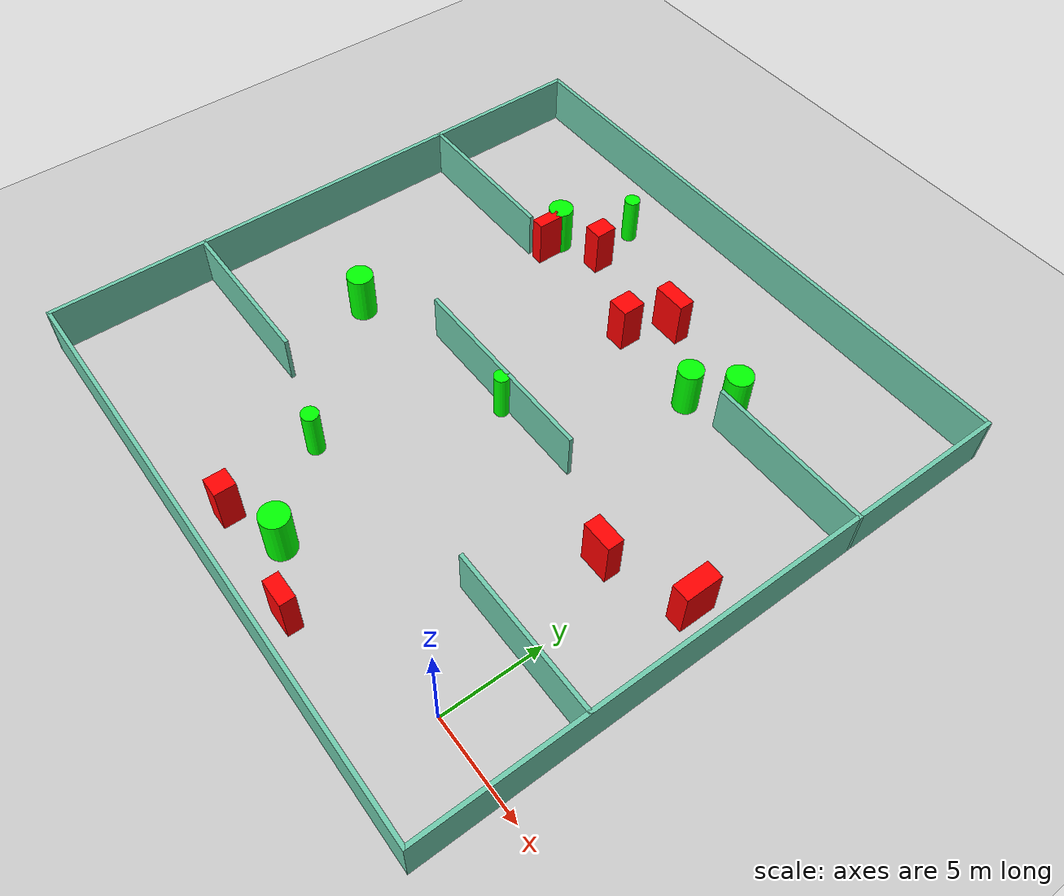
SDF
<sdf version="1.7">
 <world name="default">
  <light name="sun" type="directional">
   <pose>0 0 10 0 -0 0</pose>
   <diffuse>0.8 0.8 0.8 1</diffuse>
   <specular>0.2 0.2 0.2 1</specular>
   <attenuation>
    <range>1000</range>
    <constant>0.9</constant>
    <linear>0.01</linear>
    <quadratic>0.001</quadratic>
   </attenuation>
   <direction>-0.5 0.1 -0.9</direction>
   <spot><inner_angle>0</inner_angle><outer_angle>0</outer_angle><falloff>0</falloff></spot>
  </light>
  <model name="ground_plane">
   <static>1</static>
   <link name="link">
    <collision name="collision">
     <geometry><plane><normal>0 0 1</normal><size>100 100</size></plane></geometry>
     <surface>
      <contact><collide_bitmask>65535</collide_bitmask></contact>
      <friction><ode><mu>100</mu><mu2>50</mu2></ode></friction>
     </surface>
    </collision>
    <visual name="visual">
     <cast_shadows>0</cast_shadows>
     <geometry><plane><normal>0 0 1</normal><size>100 100</size></plane></geometry>
     <material>
      <script><uri>file://media/materials/scripts/gazebo.material</uri><name>Gazebo/Grey</name></script>
     </material>
    </visual>
   </link>
  </model>
  <gravity>0 0 -9.8</gravity>
  <magnetic_field>6e-06 2.3e-05 -4.2e-05</magnetic_field>
  <atmosphere type="adiabatic"/>
  <physics type="ode">
   <max_step_size>0.001</max_step_size>
   <real_time_factor>1</real_time_factor>
   <real_time_update_rate>1000</real_time_update_rate>
  </physics>
  <scene><ambient>0.4 0.4 0.4 1</ambient><background>0.7 0.7 0.7 1</background><shadows>1</shadows></scene>
  <spherical_coordinates>
   <surface_model>EARTH_WGS84</surface_model>
   <latitude_deg>0</latitude_deg>
   <longitude_deg>0</longitude_deg>
   <elevation>0</elevation>
   <heading_deg>0</heading_deg>
  </spherical_coordinates>
  <model name="my_base_walls">
   <link name="Wall_10">
    <collision name="Wall_10_Collision">
     <geometry><box><size>8.2 0.2 2.5</size></box></geometry>
     <pose>0 0 1.25 0 -0 0</pose>
    </collision>
    <visual name="Wall_10_Visual">
     <pose>0 0 1.25 0 -0 0</pose>
     <geometry><box><size>8.2 0.2 2.5</size></box></geometry>
     <material>
      <script><uri>file://media/materials/scripts/gazebo.material</uri><name>Gazebo/Grey</name></script>
      <ambient>0.435294 0.796078 0.67451 1</ambient>
     </material>
     <meta><layer>0</layer></meta>
    </visual>
    <pose>-11 -7 0 0 -0 0</pose>
   </link>
   <link name="Wall_12">
    <collision name="Wall_12_Collision">
     <geometry><box><size>8.2 0.2 2.5</size></box></geometry>
     <pose>0 0 1.25 0 -0 0</pose>
    </collision>
    <visual name="Wall_12_Visual">
     <pose>0 0 1.25 0 -0 0</pose>
     <geometry><box><size>8.2 0.2 2.5</size></box></geometry>
     <material>
      <script><uri>file://media/materials/scripts/gazebo.material</uri><name>Gazebo/Grey</name></script>
      <ambient>0.435294 0.796078 0.67451 1</ambient>
     </material>
     <meta><layer>0</layer></meta>
    </visual>
    <pose>-11 7 0 0 -0 0</pose>
   </link>
   <link name="Wall_14">
    <collision name="Wall_14_Collision">
     <geometry><box><size>8.2 0.2 2.5</size></box></geometry>
     <pose>0 0 1.25 0 -0 0</pose>
    </collision>
    <visual name="Wall_14_Visual">
     <pose>0 0 1.25 0 -0 0</pose>
     <geometry><box><size>8.2 0.2 2.5</size></box></geometry>
     <material>
      <script><uri>file://media/materials/scripts/gazebo.material</uri><name>Gazebo/Grey</name></script>
      <ambient>0.435294 0.796078 0.67451 1</ambient>
     </material>
     <meta><layer>0</layer></meta>
    </visual>
    <pose>11 7 0 0 -0 3.14159</pose>
   </link>
   <link name="Wall_16">
    <collision name="Wall_16_Collision">
     <geometry><box><size>10.2 0.2 2.5</size></box></geometry>
     <pose>0 0 1.25 0 -0 0</pose>
    </collision>
    <visual name="Wall_16_Visual">
     <pose>0 0 1.25 0 -0 0</pose>
     <geometry><box><size>10.2 0.2 2.5</size></box></geometry>
     <material>
      <script><uri>file://media/materials/scripts/gazebo.material</uri><name>Gazebo/Grey</name></script>
      <ambient>0.435294 0.796078 0.67451 1</ambient>
     </material>
     <meta><layer>0</layer></meta>
    </visual>
    <pose>0 0 0 0 -0 3.14159</pose>
   </link>
   <link name="Wall_2">
    <collision name="Wall_2_Collision">
     <geometry><box><size>30.2 0.2 2.5</size></box></geometry>
     <pose>0 0 1.25 0 -0 0</pose>
    </collision>
    <visual name="Wall_2_Visual">
     <pose>0 0 1.25 0 -0 0</pose>
     <geometry><box><size>30.2 0.2 2.5</size></box></geometry>
     <material>
      <script><uri>file://media/materials/scripts/gazebo.material</uri><name>Gazebo/Grey</name></script>
      <ambient>0.435294 0.796078 0.67451 1</ambient>
     </material>
     <meta><layer>0</layer></meta>
    </visual>
    <pose>0 -15 0 0 -0 3.14159</pose>
   </link>
   <link name="Wall_3">
    <collision name="Wall_3_Collision">
     <geometry><box><size>30.2 0.2 2.5</size></box></geometry>
     <pose>0 0 1.25 0 -0 0</pose>
    </collision>
    <visual name="Wall_3_Visual">
     <pose>0 0 1.25 0 -0 0</pose>
     <geometry><box><size>30.2 0.2 2.5</size></box></geometry>
     <material>
      <script><uri>file://media/materials/scripts/gazebo.material</uri><name>Gazebo/Grey</name></script>
      <ambient>0.435294 0.796078 0.67451 1</ambient>
     </material>
     <meta><layer>0</layer></meta>
    </visual>
    <pose>-15 0 0 0 -0 1.5708</pose>
   </link>
   <link name="Wall_4">
    <collision name="Wall_4_Collision">
     <geometry><box><size>30.2 0.2 2.5</size></box></geometry>
     <pose>0 0 1.25 0 -0 0</pose>
    </collision>
    <visual name="Wall_4_Visual">
     <pose>0 0 1.25 0 -0 0</pose>
     <geometry><box><size>30.2 0.2 2.5</size></box></geometry>
     <material>
      <script><uri>file://media/materials/scripts/gazebo.material</uri><name>Gazebo/Grey</name></script>
      <ambient>0.435294 0.796078 0.67451 1</ambient>
     </material>
     <meta><layer>0</layer></meta>
    </visual>
    <pose>0 15 0 0 -0 0</pose>
   </link>
   <link name="Wall_6">
    <collision name="Wall_6_Collision">
     <geometry><box><size>30.2 0.2 2.5</size></box></geometry>
     <pose>0 0 1.25 0 -0 0</pose>
    </collision>
    <visual name="Wall_6_Visual">
     <pose>0 0 1.25 0 -0 0</pose>
     <geometry><box><size>30.2 0.2 2.5</size></box></geometry>
     <material>
      <script><uri>file://media/materials/scripts/gazebo.material</uri><name>Gazebo/Grey</name></script>
      <ambient>0.435294 0.796078 0.67451 1</ambient>
     </material>
     <meta><layer>0</layer></meta>
    </visual>
    <pose>15 0 0 0 -0 1.5708</pose>
   </link>
   <link name="Wall_8">
    <collision name="Wall_8_Collision">
     <geometry><box><size>8.2 0.2 2.5</size></box></geometry>
     <pose>0 0 1.25 0 -0 0</pose>
    </collision>
    <visual name="Wall_8_Visual">
     <pose>0 0 1.25 0 -0 0</pose>
     <geometry><box><size>8.2 0.2 2.5</size></box></geometry>
     <material>
      <script><uri>file://media/materials/scripts/gazebo.material</uri><name>Gazebo/Grey</name></script>
      <ambient>0.435294 0.796078 0.67451 1</ambient>
     </material>
     <meta><layer>0</layer></meta>
    </visual>
    <pose>11 -7 0 0 -0 3.14159</pose>
   </link>
   <static>1</static>
   <pose>-11 11 0 0 -0 0</pose>
  </model>
  <model name="cylinder1">
   <static>1</static>
   <link name="link">
    <inertial>
     <mass>1</mass>
     <inertia><ixx>0.5</ixx><ixy>0</ixy><ixz>0</ixz><iyy>0.5</iyy><iyz>0</iyz><izz>1</izz></inertia>
    </inertial>
    <collision name="collision">
     <geometry><cylinder><radius>0.6910803576508978</radius><length>2.5</length></cylinder></geometry>
    </collision>
    <visual name="visual">
     <geometry><cylinder><radius>0.6910803576508978</radius><length>2.5</length></cylinder></geometry>
     <material>
      <ambient>0 1 0 1</ambient>
      <diffuse>0 1 0 1</diffuse>
      <specular>0.1 0.1 0.1 1</specular>
      <emissive>0 0 0 0</emissive>
     </material>
    </visual>
   </link>
   <pose>-10.06682192773033 -1.0397674912139192 1.25 0 0 0</pose>
  </model>
  <model name="cylinder2">
   <static>1</static>
   <link name="link">
    <inertial>
     <mass>1</mass>
     <inertia><ixx>0.5</ixx><ixy>0</ixy><ixz>0</ixz><iyy>0.5</iyy><iyz>0</iyz><izz>1</izz></inertia>
    </inertial>
    <collision name="collision">
     <geometry><cylinder><radius>0.3765198138780732</radius><length>2.5</length></cylinder></geometry>
    </collision>
    <visual name="visual">
     <geometry><cylinder><radius>0.3765198138780732</radius><length>2.5</length></cylinder></geometry>
     <material>
      <ambient>0 1 0 1</ambient>
      <diffuse>0 1 0 1</diffuse>
      <specular>0.1 0.1 0.1 1</specular>
      <emissive>0 0 0 0</emissive>
     </material>
    </visual>
   </link>
   <pose>-10.492500814583394 10.704054700562311 1.25 0 0 0</pose>
  </model>
  <model name="cylinder3">
   <static>1</static>
   <link name="link">
    <inertial>
     <mass>1</mass>
     <inertia><ixx>0.5</ixx><ixy>0</ixy><ixz>0</ixz><iyy>0.5</iyy><iyz>0</iyz><izz>1</izz></inertia>
    </inertial>
    <collision name="collision">
     <geometry><cylinder><radius>0.4213554216111641</radius><length>2.5</length></cylinder></geometry>
    </collision>
    <visual name="visual">
     <geometry><cylinder><radius>0.4213554216111641</radius><length>2.5</length></cylinder></geometry>
     <material>
      <ambient>0 1 0 1</ambient>
      <diffuse>0 1 0 1</diffuse>
      <specular>0.1 0.1 0.1 1</specular>
      <emissive>0 0 0 0</emissive>
     </material>
    </visual>
   </link>
   <pose>-13.705645103334092 2.7558926853270327 1.25 0 0 0</pose>
  </model>
  <model name="cylinder4">
   <static>1</static>
   <link name="link">
    <inertial>
     <mass>1</mass>
     <inertia><ixx>0.5</ixx><ixy>0</ixy><ixz>0</ixz><iyy>0.5</iyy><iyz>0</iyz><izz>1</izz></inertia>
    </inertial>
    <collision name="collision">
     <geometry><cylinder><radius>0.3846918907392689</radius><length>2.5</length></cylinder></geometry>
    </collision>
    <visual name="visual">
     <geometry><cylinder><radius>0.3846918907392689</radius><length>2.5</length></cylinder></geometry>
     <material>
      <ambient>0 1 0 1</ambient>
      <diffuse>0 1 0 1</diffuse>
      <specular>0.1 0.1 0.1 1</specular>
      <emissive>0 0 0 0</emissive>
     </material>
    </visual>
   </link>
   <pose>-15.89768272764081 22.900705036859858 1.25 0 0 0</pose>
  </model>
  <model name="cylinder5">
   <static>1</static>
   <link name="link">
    <inertial>
     <mass>1</mass>
     <inertia><ixx>0.5</ixx><ixy>0</ixy><ixz>0</ixz><iyy>0.5</iyy><iyz>0</iyz><izz>1</izz></inertia>
    </inertial>
    <collision name="collision">
     <geometry><cylinder><radius>0.6079593706759039</radius><length>2.5</length></cylinder></geometry>
    </collision>
    <visual name="visual">
     <geometry><cylinder><radius>0.6079593706759039</radius><length>2.5</length></cylinder></geometry>
     <material>
      <ambient>0 1 0 1</ambient>
      <diffuse>0 1 0 1</diffuse>
      <specular>0.1 0.1 0.1 1</specular>
      <emissive>0 0 0 0</emissive>
     </material>
    </visual>
   </link>
   <pose>-5.795090236079933 17.736983600702338 1.25 0 0 0</pose>
  </model>
  <model name="cylinder6">
   <static>1</static>
   <link name="link">
    <inertial>
     <mass>1</mass>
     <inertia><ixx>0.5</ixx><ixy>0</ixy><ixz>0</ixz><iyy>0.5</iyy><iyz>0</iyz><izz>1</izz></inertia>
    </inertial>
    <collision name="collision">
     <geometry><cylinder><radius>0.6469234500756411</radius><length>2.5</length></cylinder></geometry>
    </collision>
    <visual name="visual">
     <geometry><cylinder><radius>0.6469234500756411</radius><length>2.5</length></cylinder></geometry>
     <material>
      <ambient>0 1 0 1</ambient>
      <diffuse>0 1 0 1</diffuse>
      <specular>0.1 0.1 0.1 1</specular>
      <emissive>0 0 0 0</emissive>
     </material>
    </visual>
   </link>
   <pose>-4.234920776030503 19.250230286550956 1.25 0 0 0</pose>
  </model>
  <model name="cylinder7">
   <static>1</static>
   <link name="link">
    <inertial>
     <mass>1</mass>
     <inertia><ixx>0.5</ixx><ixy>0</ixy><ixz>0</ixz><iyy>0.5</iyy><iyz>0</iyz><izz>1</izz></inertia>
    </inertial>
    <collision name="collision">
     <geometry><cylinder><radius>0.6475685721431615</radius><length>2.5</length></cylinder></geometry>
    </collision>
    <visual name="visual">
     <geometry><cylinder><radius>0.6475685721431615</radius><length>2.5</length></cylinder></geometry>
     <material>
      <ambient>0 1 0 1</ambient>
      <diffuse>0 1 0 1</diffuse>
      <specular>0.1 0.1 0.1 1</specular>
      <emissive>0 0 0 0</emissive>
     </material>
    </visual>
   </link>
   <pose>-19.563550514251705 8.945538085339177 1.25 0 0 0</pose>
  </model>
  <model name="cylinder8">
   <static>1</static>
   <link name="link">
    <inertial>
     <mass>1</mass>
     <inertia><ixx>0.5</ixx><ixy>0</ixy><ixz>0</ixz><iyy>0.5</iyy><iyz>0</iyz><izz>1</izz></inertia>
    </inertial>
    <collision name="collision">
     <geometry><cylinder><radius>0.6145937363961245</radius><length>2.5</length></cylinder></geometry>
    </collision>
    <visual name="visual">
     <geometry><cylinder><radius>0.6145937363961245</radius><length>2.5</length></cylinder></geometry>
     <material>
      <ambient>0 1 0 1</ambient>
      <diffuse>0 1 0 1</diffuse>
      <specular>0.1 0.1 0.1 1</specular>
      <emissive>0 0 0 0</emissive>
     </material>
    </visual>
   </link>
   <pose>-17.55842543729361 19.613749381695406 1.25 0 0 0</pose>
  </model>
  <model name="box1">
   <static>1</static>
   <link name="link">
    <inertial>
     <mass>1</mass>
     <inertia><ixx>0.083</ixx><ixy>0</ixy><ixz>0</ixz><iyy>0.083</iyy><iyz>0</iyz><izz>0.083</izz></inertia>
    </inertial>
    <collision name="collision">
     <geometry><box><size>0.8710505163602562 1.8393741080289128 2.5</size></box></geometry>
    </collision>
    <visual name="visual">
     <geometry><box><size>0.8710505163602562 1.8393741080289128 2.5</size></box></geometry>
     <material>
      <ambient>1 0 0 1</ambient>
      <diffuse>1 0 0 1</diffuse>
      <specular>0.1 0.1 0.1 1</specular>
      <emissive>0 0 0 0</emissive>
     </material>
    </visual>
    <sensor name="my_contact" type="contact">
     <contact><collision>box_collision</collision><topic>__default_topic__</topic></contact>
    </sensor>
   </link>
   <pose>2.3225156443717694 10.714939866275827 1.25 0 0 0</pose>
  </model>
  <model name="box2">
   <static>1</static>
   <link name="link">
    <inertial>
     <mass>1</mass>
     <inertia><ixx>0.083</ixx><ixy>0</ixy><ixz>0</ixz><iyy>0.083</iyy><iyz>0</iyz><izz>0.083</izz></inertia>
    </inertial>
    <collision name="collision">
     <geometry><box><size>1.684910677243807 0.7979585496902841 2.5</size></box></geometry>
    </collision>
    <visual name="visual">
     <geometry><box><size>1.684910677243807 0.7979585496902841 2.5</size></box></geometry>
     <material>
      <ambient>1 0 0 1</ambient>
      <diffuse>1 0 0 1</diffuse>
      <specular>0.1 0.1 0.1 1</specular>
      <emissive>0 0 0 0</emissive>
     </material>
    </visual>
    <sensor name="my_contact" type="contact">
     <contact><collision>box_collision</collision><topic>__default_topic__</topic></contact>
    </sensor>
   </link>
   <pose>-9.655047511614434 20.2260182124878 1.25 0 0 0</pose>
  </model>
  <model name="box3">
   <static>1</static>
   <link name="link">
    <inertial>
     <mass>1</mass>
     <inertia><ixx>0.083</ixx><ixy>0</ixy><ixz>0</ixz><iyy>0.083</iyy><iyz>0</iyz><izz>0.083</izz></inertia>
    </inertial>
    <collision name="collision">
     <geometry><box><size>0.6420137381880224 1.3512929608796294 2.5</size></box></geometry>
    </collision>
    <visual name="visual">
     <geometry><box><size>0.6420137381880224 1.3512929608796294 2.5</size></box></geometry>
     <material>
      <ambient>1 0 0 1</ambient>
      <diffuse>1 0 0 1</diffuse>
      <specular>0.1 0.1 0.1 1</specular>
      <emissive>0 0 0 0</emissive>
     </material>
    </visual>
    <sensor name="my_contact" type="contact">
     <contact><collision>box_collision</collision><topic>__default_topic__</topic></contact>
    </sensor>
   </link>
   <pose>-17.365953346935644 18.623876487410016 1.25 0 0 0</pose>
  </model>
  <model name="box4">
   <static>1</static>
   <link name="link">
    <inertial>
     <mass>1</mass>
     <inertia><ixx>0.083</ixx><ixy>0</ixy><ixz>0</ixz><iyy>0.083</iyy><iyz>0</iyz><izz>0.083</izz></inertia>
    </inertial>
    <collision name="collision">
     <geometry><box><size>1.529344388965862 0.8133285444853513 2.5</size></box></geometry>
    </collision>
    <visual name="visual">
     <geometry><box><size>1.529344388965862 0.8133285444853513 2.5</size></box></geometry>
     <material>
      <ambient>1 0 0 1</ambient>
      <diffuse>1 0 0 1</diffuse>
      <specular>0.1 0.1 0.1 1</specular>
      <emissive>0 0 0 0</emissive>
     </material>
    </visual>
    <sensor name="my_contact" type="contact">
     <contact><collision>box_collision</collision><topic>__default_topic__</topic></contact>
    </sensor>
   </link>
   <pose>-1.5461165904285146 9.19969083384401 1.25 0 0 0</pose>
  </model>
  <model name="box5">
   <static>1</static>
   <link name="link">
    <inertial>
     <mass>1</mass>
     <inertia><ixx>0.083</ixx><ixy>0</ixy><ixz>0</ixz><iyy>0.083</iyy><iyz>0</iyz><izz>0.083</izz></inertia>
    </inertial>
    <collision name="collision">
     <geometry><box><size>1.0638672117289154 1.1692891882712009 2.5</size></box></geometry>
    </collision>
    <visual name="visual">
     <geometry><box><size>1.0638672117289154 1.1692891882712009 2.5</size></box></geometry>
     <material>
      <ambient>1 0 0 1</ambient>
      <diffuse>1 0 0 1</diffuse>
      <specular>0.1 0.1 0.1 1</specular>
      <emissive>0 0 0 0</emissive>
     </material>
    </visual>
    <sensor name="my_contact" type="contact">
     <contact><collision>box_collision</collision><topic>__default_topic__</topic></contact>
    </sensor>
   </link>
   <pose>-10.62013060868996 18.088296999429314 1.25 0 0 0</pose>
  </model>
  <model name="box6">
   <static>1</static>
   <link name="link">
    <inertial>
     <mass>1</mass>
     <inertia><ixx>0.083</ixx><ixy>0</ixy><ixz>0</ixz><iyy>0.083</iyy><iyz>0</iyz><izz>0.083</izz></inertia>
    </inertial>
    <collision name="collision">
     <geometry><box><size>0.9927320075177908 1.0374524541068253 2.5</size></box></geometry>
    </collision>
    <visual name="visual">
     <geometry><box><size>0.9927320075177908 1.0374524541068253 2.5</size></box></geometry>
     <material>
      <ambient>1 0 0 1</ambient>
      <diffuse>1 0 0 1</diffuse>
      <specular>0.1 0.1 0.1 1</specular>
      <emissive>0 0 0 0</emissive>
     </material>
    </visual>
    <sensor name="my_contact" type="contact">
     <contact><collision>box_collision</collision><topic>__default_topic__</topic></contact>
    </sensor>
   </link>
   <pose>-12.812212873059803 -2.0570859474559255 1.25 0 0 0</pose>
  </model>
  <model name="box7">
   <static>1</static>
   <link name="link">
    <inertial>
     <mass>1</mass>
     <inertia><ixx>0.083</ixx><ixy>0</ixy><ixz>0</ixz><iyy>0.083</iyy><iyz>0</iyz><izz>0.083</izz></inertia>
    </inertial>
    <collision name="collision">
     <geometry><box><size>0.9311744499578631 1.0882407304162267 2.5</size></box></geometry>
    </collision>
    <visual name="visual">
     <geometry><box><size>0.9311744499578631 1.0882407304162267 2.5</size></box></geometry>
     <material>
      <ambient>1 0 0 1</ambient>
      <diffuse>1 0 0 1</diffuse>
      <specular>0.1 0.1 0.1 1</specular>
      <emissive>0 0 0 0</emissive>
     </material>
    </visual>
    <sensor name="my_contact" type="contact">
     <contact><collision>box_collision</collision><topic>__default_topic__</topic></contact>
    </sensor>
   </link>
   <pose>-15.280494286190581 20.329067140179607 1.25 0 0 0</pose>
  </model>
  <model name="box8">
   <static>1</static>
   <link name="link">
    <inertial>
     <mass>1</mass>
     <inertia><ixx>0.083</ixx><ixy>0</ixy><ixz>0</ixz><iyy>0.083</iyy><iyz>0</iyz><izz>0.083</izz></inertia>
    </inertial>
    <collision name="collision">
     <geometry><box><size>1.3704046335556463 0.7393880445454056 2.5</size></box></geometry>
    </collision>
    <visual name="visual">
     <geometry><box><size>1.3704046335556463 0.7393880445454056 2.5</size></box></geometry>
     <material>
      <ambient>1 0 0 1</ambient>
      <diffuse>1 0 0 1</diffuse>
      <specular>0.1 0.1 0.1 1</specular>
      <emissive>0 0 0 0</emissive>
     </material>
    </visual>
    <sensor name="my_contact" type="contact">
     <contact><collision>box_collision</collision><topic>__default_topic__</topic></contact>
    </sensor>
   </link>
   <pose>-6.999533672157511 -2.544846386810511 1.25 0 0 0</pose>
  </model>
 </world>
</sdf>
